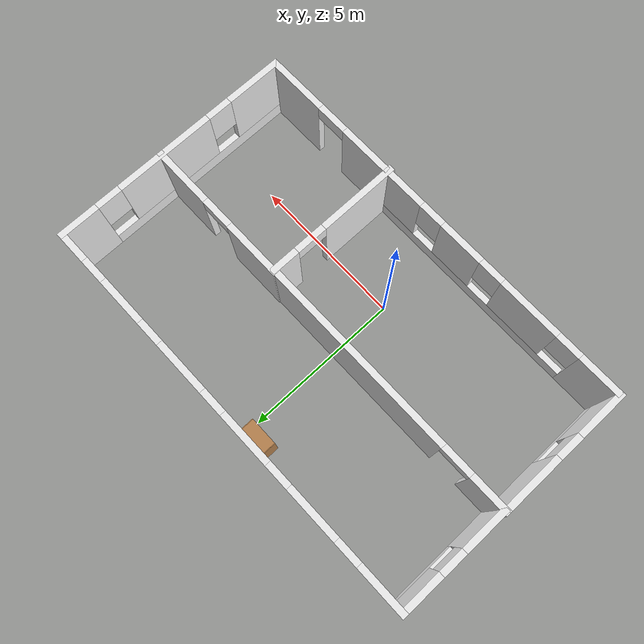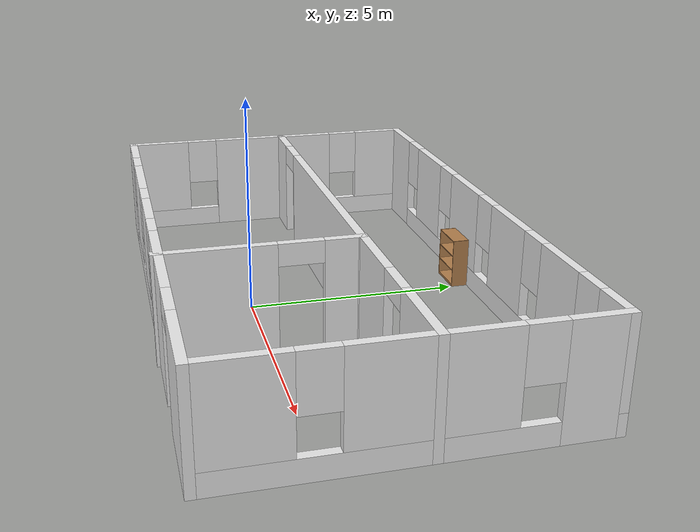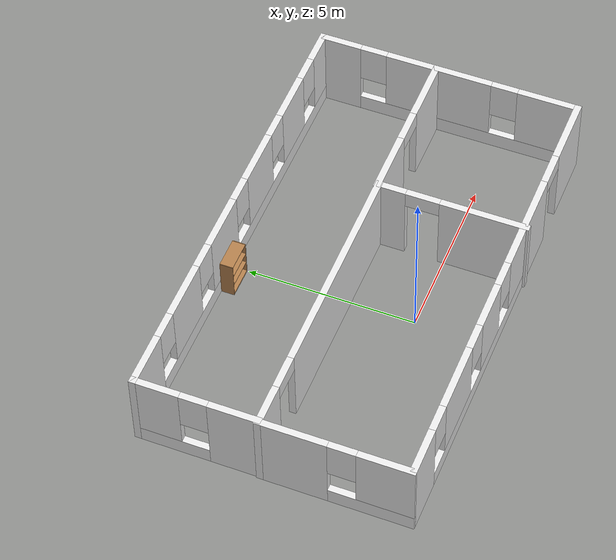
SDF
<sdf version="1.4">
 <world name="default">
  <model name="bookshelf">
   <static>0</static>
   <link name="link">
    <inertial><mass>1</mass></inertial>
    <collision name="back">
     <pose>0 0.005 0.6 0 -0 0</pose>
     <geometry><box><size>0.9 0.01 1.2</size></box></geometry>
    </collision>
    <visual name="visual1">
     <pose>0 0.005 0.6 0 -0 0</pose>
     <geometry><box><size>0.9 0.01 1.2</size></box></geometry>
     <material>
      <script><uri>file://media/materials/scripts/gazebo.material</uri><name>Gazebo/Wood</name></script>
     </material>
    </visual>
    <collision name="left_side">
     <pose>0.45 -0.195 0.6 0 -0 0</pose>
     <geometry><box><size>0.02 0.4 1.2</size></box></geometry>
    </collision>
    <visual name="visual2">
     <pose>0.45 -0.195 0.6 0 -0 0</pose>
     <geometry><box><size>0.02 0.4 1.2</size></box></geometry>
     <material>
      <script><uri>file://media/materials/scripts/gazebo.material</uri><name>Gazebo/Wood</name></script>
     </material>
    </visual>
    <collision name="right_side">
     <pose>-0.45 -0.195 0.6 0 -0 0</pose>
     <geometry><box><size>0.02 0.4 1.2</size></box></geometry>
    </collision>
    <visual name="visual3">
     <pose>-0.45 -0.195 0.6 0 -0 0</pose>
     <geometry><box><size>0.02 0.4 1.2</size></box></geometry>
     <material>
      <script><uri>file://media/materials/scripts/gazebo.material</uri><name>Gazebo/Wood</name></script>
     </material>
    </visual>
    <collision name="bottom">
     <pose>0 -0.195 0.03 0 -0 0</pose>
     <geometry><box><size>0.88 0.4 0.06</size></box></geometry>
    </collision>
    <visual name="visual4">
     <pose>0 -0.195 0.03 0 -0 0</pose>
     <geometry><box><size>0.88 0.4 0.06</size></box></geometry>
     <material>
      <script><uri>file://media/materials/scripts/gazebo.material</uri><name>Gazebo/Wood</name></script>
     </material>
    </visual>
    <collision name="top">
     <pose>0 -0.195 1.19 0 -0 0</pose>
     <geometry><box><size>0.88 0.4 0.02</size></box></geometry>
    </collision>
    <visual name="visual5">
     <pose>0 -0.195 1.19 0 -0 0</pose>
     <geometry><box><size>0.88 0.4 0.02</size></box></geometry>
     <material>
      <script><uri>file://media/materials/scripts/gazebo.material</uri><name>Gazebo/Wood</name></script>
     </material>
    </visual>
    <collision name="low_shelf">
     <pose>0 -0.195 0.43 0 -0 0</pose>
     <geometry><box><size>0.88 0.4 0.02</size></box></geometry>
    </collision>
    <visual name="visual6">
     <pose>0 -0.195 0.43 0 -0 0</pose>
     <geometry><box><size>0.88 0.4 0.02</size></box></geometry>
     <material>
      <script><uri>file://media/materials/scripts/gazebo.material</uri><name>Gazebo/Wood</name></script>
     </material>
    </visual>
    <collision name="high_shelf">
     <pose>0 -0.195 0.8 0 -0 0</pose>
     <geometry><box><size>0.88 0.4 0.02</size></box></geometry>
    </collision>
    <visual name="visual7">
     <pose>0 -0.195 0.8 0 -0 0</pose>
     <geometry><box><size>0.88 0.4 0.02</size></box></geometry>
     <material>
      <script><uri>file://media/materials/scripts/gazebo.material</uri><name>Gazebo/Wood</name></script>
     </material>
    </visual>
    <velocity_decay><linear>0</linear><angular>0</angular></velocity_decay>
   </link>
   <pose>-0.462025 5.45256 0 0 -0 0</pose>
  </model>
  <model name="threedoors">
   <static>1</static>
   <link name="Wall_1">
    <pose>-1.88691 -2.24867 0 0 -0 0</pose>
    <visual name="Wall_1_Visual_0">
     <pose>-3.67075 0 1.25 0 -0 0</pose>
     <geometry><box><size>1.39369 0.2 2.5</size></box></geometry>
     <material>
      <script><uri>file://media/materials/scripts/gazebo.material</uri><name>Gazebo/White</name></script>
     </material>
    </visual>
    <collision name="Wall_1_Collision_0">
     <geometry><box><size>1.39369 0.2 2.5</size></box></geometry>
     <pose>-3.67075 0 1.25 0 -0 0</pose>
    </collision>
    <visual name="Wall_1_Visual_1">
     <pose>0.696847 0 0.25 0 -0 0</pose>
     <geometry><box><size>7.3415 0.2 0.5</size></box></geometry>
     <material>
      <script><uri>file://media/materials/scripts/gazebo.material</uri><name>Gazebo/White</name></script>
     </material>
    </visual>
    <collision name="Wall_1_Collision_1">
     <geometry><box><size>7.3415 0.2 0.5</size></box></geometry>
     <pose>0.696847 0 0.25 0 -0 0</pose>
    </collision>
    <visual name="Wall_1_Visual_2">
     <pose>-1.16675 0 1.5 0 -0 0</pose>
     <geometry><box><size>2.0143 0.2 2</size></box></geometry>
     <material>
      <script><uri>file://media/materials/scripts/gazebo.material</uri><name>Gazebo/White</name></script>
     </material>
    </visual>
    <collision name="Wall_1_Collision_2">
     <geometry><box><size>2.0143 0.2 2</size></box></geometry>
     <pose>-1.16675 0 1.5 0 -0 0</pose>
    </collision>
    <visual name="Wall_1_Visual_3">
     <pose>1.37224 0 1.5 0 -0 0</pose>
     <geometry><box><size>1.46368 0.2 2</size></box></geometry>
     <material>
      <script><uri>file://media/materials/scripts/gazebo.material</uri><name>Gazebo/White</name></script>
     </material>
    </visual>
    <collision name="Wall_1_Collision_3">
     <geometry><box><size>1.46368 0.2 2</size></box></geometry>
     <pose>1.37224 0 1.5 0 -0 0</pose>
    </collision>
    <visual name="Wall_1_Visual_4">
     <pose>3.63584 0 1.5 0 -0 0</pose>
     <geometry><box><size>1.46352 0.2 2</size></box></geometry>
     <material>
      <script><uri>file://media/materials/scripts/gazebo.material</uri><name>Gazebo/White</name></script>
     </material>
    </visual>
    <collision name="Wall_1_Collision_4">
     <geometry><box><size>1.46352 0.2 2</size></box></geometry>
     <pose>3.63584 0 1.5 0 -0 0</pose>
    </collision>
    <visual name="Wall_1_Visual_5">
     <pose>-2.5739 0 1.9 0 -0 0</pose>
     <geometry><box><size>0.8 0.2 1.2</size></box></geometry>
     <material>
      <script><uri>file://media/materials/scripts/gazebo.material</uri><name>Gazebo/White</name></script>
     </material>
    </visual>
    <collision name="Wall_1_Collision_5">
     <geometry><box><size>0.8 0.2 1.2</size></box></geometry>
     <pose>-2.5739 0 1.9 0 -0 0</pose>
    </collision>
    <visual name="Wall_1_Visual_6">
     <pose>0.240401 0 1.9 0 -0 0</pose>
     <geometry><box><size>0.8 0.2 1.2</size></box></geometry>
     <material>
      <script><uri>file://media/materials/scripts/gazebo.material</uri><name>Gazebo/White</name></script>
     </material>
    </visual>
    <collision name="Wall_1_Collision_6">
     <geometry><box><size>0.8 0.2 1.2</size></box></geometry>
     <pose>0.240401 0 1.9 0 -0 0</pose>
    </collision>
    <visual name="Wall_1_Visual_7">
     <pose>2.50408 0 1.9 0 -0 0</pose>
     <geometry><box><size>0.8 0.2 1.2</size></box></geometry>
     <material>
      <script><uri>file://media/materials/scripts/gazebo.material</uri><name>Gazebo/White</name></script>
     </material>
    </visual>
    <collision name="Wall_1_Collision_7">
     <geometry><box><size>0.8 0.2 1.2</size></box></geometry>
     <pose>2.50408 0 1.9 0 -0 0</pose>
    </collision>
   </link>
   <link name="Wall_10">
    <pose>7.0717 1.65175 0 0 0 -1.5708</pose>
    <visual name="Wall_10_Visual_0">
     <pose>-3.34638 0 1.25 0 -0 0</pose>
     <geometry><box><size>1.30775 0.2 2.5</size></box></geometry>
     <material>
      <script><uri>file://media/materials/scripts/gazebo.material</uri><name>Gazebo/White</name></script>
     </material>
    </visual>
    <collision name="Wall_10_Collision_0">
     <geometry><box><size>1.30775 0.2 2.5</size></box></geometry>
     <pose>-3.34638 0 1.25 0 -0 0</pose>
    </collision>
    <visual name="Wall_10_Visual_1">
     <pose>0.653875 0 0.25 0 -0 0</pose>
     <geometry><box><size>6.69276 0.2 0.5</size></box></geometry>
     <material>
      <script><uri>file://media/materials/scripts/gazebo.material</uri><name>Gazebo/White</name></script>
     </material>
    </visual>
    <collision name="Wall_10_Collision_1">
     <geometry><box><size>6.69276 0.2 0.5</size></box></geometry>
     <pose>0.653875 0 0.25 0 -0 0</pose>
    </collision>
    <visual name="Wall_10_Visual_2">
     <pose>-0.287315 0 1.5 0 -0 0</pose>
     <geometry><box><size>3.21038 0.2 2</size></box></geometry>
     <material>
      <script><uri>file://media/materials/scripts/gazebo.material</uri><name>Gazebo/White</name></script>
     </material>
    </visual>
    <collision name="Wall_10_Collision_2">
     <geometry><box><size>3.21038 0.2 2</size></box></geometry>
     <pose>-0.287315 0 1.5 0 -0 0</pose>
    </collision>
    <visual name="Wall_10_Visual_3">
     <pose>3.05906 0 1.5 0 -0 0</pose>
     <geometry><box><size>1.88238 0.2 2</size></box></geometry>
     <material>
      <script><uri>file://media/materials/scripts/gazebo.material</uri><name>Gazebo/White</name></script>
     </material>
    </visual>
    <collision name="Wall_10_Collision_3">
     <geometry><box><size>1.88238 0.2 2</size></box></geometry>
     <pose>3.05906 0 1.5 0 -0 0</pose>
    </collision>
    <visual name="Wall_10_Visual_4">
     <pose>-2.2925 0 1.9 0 -0 0</pose>
     <geometry><box><size>0.8 0.2 1.2</size></box></geometry>
     <material>
      <script><uri>file://media/materials/scripts/gazebo.material</uri><name>Gazebo/White</name></script>
     </material>
    </visual>
    <collision name="Wall_10_Collision_4">
     <geometry><box><size>0.8 0.2 1.2</size></box></geometry>
     <pose>-2.2925 0 1.9 0 -0 0</pose>
    </collision>
    <visual name="Wall_10_Visual_5">
     <pose>1.71787 0 1.9 0 -0 0</pose>
     <geometry><box><size>0.8 0.2 1.2</size></box></geometry>
     <material>
      <script><uri>file://media/materials/scripts/gazebo.material</uri><name>Gazebo/White</name></script>
     </material>
    </visual>
    <collision name="Wall_10_Collision_5">
     <geometry><box><size>0.8 0.2 1.2</size></box></geometry>
     <pose>1.71787 0 1.9 0 -0 0</pose>
    </collision>
   </link>
   <link name="Wall_11">
    <pose>4.79273 -2.24851 0 0 -0 3.14159</pose>
    <visual name="Wall_11_Visual_0">
     <pose>-1.35536 0 1.25 0 -0 0</pose>
     <geometry><box><size>2.04722 0.2 2.5</size></box></geometry>
     <material>
      <script><uri>file://media/materials/scripts/gazebo.material</uri><name>Gazebo/White</name></script>
     </material>
    </visual>
    <collision name="Wall_11_Collision_0">
     <geometry><box><size>2.04722 0.2 2.5</size></box></geometry>
     <pose>-1.35536 0 1.25 0 -0 0</pose>
    </collision>
    <visual name="Wall_11_Visual_1">
     <pose>1.52361 0 1.25 0 -0 0</pose>
     <geometry><box><size>1.71072 0.2 2.5</size></box></geometry>
     <material>
      <script><uri>file://media/materials/scripts/gazebo.material</uri><name>Gazebo/White</name></script>
     </material>
    </visual>
    <collision name="Wall_11_Collision_1">
     <geometry><box><size>1.71072 0.2 2.5</size></box></geometry>
     <pose>1.52361 0 1.25 0 -0 0</pose>
    </collision>
    <visual name="Wall_11_Visual_2">
     <pose>0.168246 0 2.25 0 -0 0</pose>
     <geometry><box><size>1 0.2 0.5</size></box></geometry>
     <material>
      <script><uri>file://media/materials/scripts/gazebo.material</uri><name>Gazebo/White</name></script>
     </material>
    </visual>
    <collision name="Wall_11_Collision_2">
     <geometry><box><size>1 0.2 0.5</size></box></geometry>
     <pose>0.168246 0 2.25 0 -0 0</pose>
    </collision>
   </link>
   <link name="Wall_13">
    <pose>4.71626 2.03413 0 0 -0 0</pose>
    <visual name="Wall_13_Visual_0">
     <pose>-1.49302 0 1.25 0 -0 0</pose>
     <geometry><box><size>1.92486 0.2 2.5</size></box></geometry>
     <material>
      <script><uri>file://media/materials/scripts/gazebo.material</uri><name>Gazebo/White</name></script>
     </material>
    </visual>
    <collision name="Wall_13_Collision_0">
     <geometry><box><size>1.92486 0.2 2.5</size></box></geometry>
     <pose>-1.49302 0 1.25 0 -0 0</pose>
    </collision>
    <visual name="Wall_13_Visual_1">
     <pose>1.46243 0 1.25 0 -0 0</pose>
     <geometry><box><size>1.98604 0.2 2.5</size></box></geometry>
     <material>
      <script><uri>file://media/materials/scripts/gazebo.material</uri><name>Gazebo/White</name></script>
     </material>
    </visual>
    <collision name="Wall_13_Collision_1">
     <geometry><box><size>1.98604 0.2 2.5</size></box></geometry>
     <pose>1.46243 0 1.25 0 -0 0</pose>
    </collision>
    <visual name="Wall_13_Visual_2">
     <pose>-0.03059 0 2.25 0 -0 0</pose>
     <geometry><box><size>1 0.2 0.5</size></box></geometry>
     <material>
      <script><uri>file://media/materials/scripts/gazebo.material</uri><name>Gazebo/White</name></script>
     </material>
    </visual>
    <collision name="Wall_13_Collision_2">
     <geometry><box><size>1 0.2 0.5</size></box></geometry>
     <pose>-0.03059 0 2.25 0 -0 0</pose>
    </collision>
   </link>
   <link name="Wall_3">
    <pose>2.37826 -0.155399 0 0 -0 1.5708</pose>
    <visual name="Wall_3_Visual_0">
     <pose>-0.95997 0 1.25 0 -0 0</pose>
     <geometry><box><size>2.60705 0.2 2.5</size></box></geometry>
     <material>
      <script><uri>file://media/materials/scripts/gazebo.material</uri><name>Gazebo/White</name></script>
     </material>
    </visual>
    <collision name="Wall_3_Collision_0">
     <geometry><box><size>2.60705 0.2 2.5</size></box></geometry>
     <pose>-0.95997 0 1.25 0 -0 0</pose>
    </collision>
    <visual name="Wall_3_Visual_1">
     <pose>1.80353 0 1.25 0 -0 0</pose>
     <geometry><box><size>0.91994 0.2 2.5</size></box></geometry>
     <material>
      <script><uri>file://media/materials/scripts/gazebo.material</uri><name>Gazebo/White</name></script>
     </material>
    </visual>
    <collision name="Wall_3_Collision_1">
     <geometry><box><size>0.91994 0.2 2.5</size></box></geometry>
     <pose>1.80353 0 1.25 0 -0 0</pose>
    </collision>
    <visual name="Wall_3_Visual_2">
     <pose>0.843555 0 2.25 0 -0 0</pose>
     <geometry><box><size>1 0.2 0.5</size></box></geometry>
     <material>
      <script><uri>file://media/materials/scripts/gazebo.material</uri><name>Gazebo/White</name></script>
     </material>
    </visual>
    <collision name="Wall_3_Collision_2">
     <geometry><box><size>1 0.2 0.5</size></box></geometry>
     <pose>0.843555 0 2.25 0 -0 0</pose>
    </collision>
   </link>
   <link name="Wall_4">
    <pose>-1.93114 2.00809 0 0 -0 3.14159</pose>
    <visual name="Wall_4_Visual_0">
     <pose>-1.14398 0 1.25 0 -0 0</pose>
     <geometry><box><size>6.53085 0.2 2.5</size></box></geometry>
     <material>
      <script><uri>file://media/materials/scripts/gazebo.material</uri><name>Gazebo/White</name></script>
     </material>
    </visual>
    <collision name="Wall_4_Collision_0">
     <geometry><box><size>6.53085 0.2 2.5</size></box></geometry>
     <pose>-1.14398 0 1.25 0 -0 0</pose>
    </collision>
    <visual name="Wall_4_Visual_1">
     <pose>3.76542 0 1.25 0 -0 0</pose>
     <geometry><box><size>1.28795 0.2 2.5</size></box></geometry>
     <material>
      <script><uri>file://media/materials/scripts/gazebo.material</uri><name>Gazebo/White</name></script>
     </material>
    </visual>
    <collision name="Wall_4_Collision_1">
     <geometry><box><size>1.28795 0.2 2.5</size></box></geometry>
     <pose>3.76542 0 1.25 0 -0 0</pose>
    </collision>
    <visual name="Wall_4_Visual_2">
     <pose>2.62145 0 2.25 0 -0 0</pose>
     <geometry><box><size>1 0.2 0.5</size></box></geometry>
     <material>
      <script><uri>file://media/materials/scripts/gazebo.material</uri><name>Gazebo/White</name></script>
     </material>
    </visual>
    <collision name="Wall_4_Collision_2">
     <geometry><box><size>1 0.2 0.5</size></box></geometry>
     <pose>2.62145 0 2.25 0 -0 0</pose>
    </collision>
   </link>
   <link name="Wall_5">
    <pose>-6.24054 -0.120221 0 0 0 -1.5708</pose>
    <visual name="Wall_5_Visual_0">
     <pose>-1.21361 0 1.25 0 -0 0</pose>
     <geometry><box><size>2.02942 0.2 2.5</size></box></geometry>
     <material>
      <script><uri>file://media/materials/scripts/gazebo.material</uri><name>Gazebo/White</name></script>
     </material>
    </visual>
    <collision name="Wall_5_Collision_0">
     <geometry><box><size>2.02942 0.2 2.5</size></box></geometry>
     <pose>-1.21361 0 1.25 0 -0 0</pose>
    </collision>
    <visual name="Wall_5_Visual_1">
     <pose>1.01471 0 0.25 0 -0 0</pose>
     <geometry><box><size>2.42721 0.2 0.5</size></box></geometry>
     <material>
      <script><uri>file://media/materials/scripts/gazebo.material</uri><name>Gazebo/White</name></script>
     </material>
    </visual>
    <collision name="Wall_5_Collision_1">
     <geometry><box><size>2.42721 0.2 0.5</size></box></geometry>
     <pose>1.01471 0 0.25 0 -0 0</pose>
    </collision>
    <visual name="Wall_5_Visual_2">
     <pose>1.41471 0 1.5 0 -0 0</pose>
     <geometry><box><size>1.62721 0.2 2</size></box></geometry>
     <material>
      <script><uri>file://media/materials/scripts/gazebo.material</uri><name>Gazebo/White</name></script>
     </material>
    </visual>
    <collision name="Wall_5_Collision_2">
     <geometry><box><size>1.62721 0.2 2</size></box></geometry>
     <pose>1.41471 0 1.5 0 -0 0</pose>
    </collision>
    <visual name="Wall_5_Visual_3">
     <pose>0.201101 0 1.9 0 -0 0</pose>
     <geometry><box><size>0.8 0.2 1.2</size></box></geometry>
     <material>
      <script><uri>file://media/materials/scripts/gazebo.material</uri><name>Gazebo/White</name></script>
     </material>
    </visual>
    <collision name="Wall_5_Collision_3">
     <geometry><box><size>0.8 0.2 1.2</size></box></geometry>
     <pose>0.201101 0 1.9 0 -0 0</pose>
    </collision>
   </link>
   <link name="Wall_8">
    <pose>-6.20446 3.79306 0 0 -0 1.5708</pose>
    <visual name="Wall_8_Visual_0">
     <pose>-1.10653 0 1.25 0 -0 0</pose>
     <geometry><box><size>1.50483 0.2 2.5</size></box></geometry>
     <material>
      <script><uri>file://media/materials/scripts/gazebo.material</uri><name>Gazebo/White</name></script>
     </material>
    </visual>
    <collision name="Wall_8_Collision_0">
     <geometry><box><size>1.50483 0.2 2.5</size></box></geometry>
     <pose>-1.10653 0 1.25 0 -0 0</pose>
    </collision>
    <visual name="Wall_8_Visual_1">
     <pose>0.752413 0 0.25 0 -0 0</pose>
     <geometry><box><size>2.21306 0.2 0.5</size></box></geometry>
     <material>
      <script><uri>file://media/materials/scripts/gazebo.material</uri><name>Gazebo/White</name></script>
     </material>
    </visual>
    <collision name="Wall_8_Collision_1">
     <geometry><box><size>2.21306 0.2 0.5</size></box></geometry>
     <pose>0.752413 0 0.25 0 -0 0</pose>
    </collision>
    <visual name="Wall_8_Visual_2">
     <pose>1.15241 0 1.5 0 -0 0</pose>
     <geometry><box><size>1.41305 0.2 2</size></box></geometry>
     <material>
      <script><uri>file://media/materials/scripts/gazebo.material</uri><name>Gazebo/White</name></script>
     </material>
    </visual>
    <collision name="Wall_8_Collision_2">
     <geometry><box><size>1.41305 0.2 2</size></box></geometry>
     <pose>1.15241 0 1.5 0 -0 0</pose>
    </collision>
    <visual name="Wall_8_Visual_3">
     <pose>0.045885 0 1.9 0 -0 0</pose>
     <geometry><box><size>0.8 0.2 1.2</size></box></geometry>
     <material>
      <script><uri>file://media/materials/scripts/gazebo.material</uri><name>Gazebo/White</name></script>
     </material>
    </visual>
    <collision name="Wall_8_Collision_3">
     <geometry><box><size>0.8 0.2 1.2</size></box></geometry>
     <pose>0.045885 0 1.9 0 -0 0</pose>
    </collision>
   </link>
   <link name="Wall_9">
    <pose>0.433623 5.552 0 0 -0 0</pose>
    <visual name="Wall_9_Visual_0">
     <pose>-5.9245 0 1.25 0 -0 0</pose>
     <geometry><box><size>1.62721 0.2 2.5</size></box></geometry>
     <material>
      <script><uri>file://media/materials/scripts/gazebo.material</uri><name>Gazebo/White</name></script>
     </material>
    </visual>
    <collision name="Wall_9_Collision_0">
     <geometry><box><size>1.62721 0.2 2.5</size></box></geometry>
     <pose>-5.9245 0 1.25 0 -0 0</pose>
    </collision>
    <visual name="Wall_9_Visual_1">
     <pose>0.813602 0 0.25 0 -0 0</pose>
     <geometry><box><size>11.849 0.2 0.5</size></box></geometry>
     <material>
      <script><uri>file://media/materials/scripts/gazebo.material</uri><name>Gazebo/White</name></script>
     </material>
    </visual>
    <collision name="Wall_9_Collision_1">
     <geometry><box><size>11.849 0.2 0.5</size></box></geometry>
     <pose>0.813602 0 0.25 0 -0 0</pose>
    </collision>
    <visual name="Wall_9_Visual_2">
     <pose>-3.4389 0 1.5 0 -0 0</pose>
     <geometry><box><size>1.744 0.2 2</size></box></geometry>
     <material>
      <script><uri>file://media/materials/scripts/gazebo.material</uri><name>Gazebo/White</name></script>
     </material>
    </visual>
    <collision name="Wall_9_Collision_2">
     <geometry><box><size>1.744 0.2 2</size></box></geometry>
     <pose>-3.4389 0 1.5 0 -0 0</pose>
    </collision>
    <visual name="Wall_9_Visual_3">
     <pose>-0.900462 0 1.5 0 -0 0</pose>
     <geometry><box><size>1.73287 0.2 2</size></box></geometry>
     <material>
      <script><uri>file://media/materials/scripts/gazebo.material</uri><name>Gazebo/White</name></script>
     </material>
    </visual>
    <collision name="Wall_9_Collision_3">
     <geometry><box><size>1.73287 0.2 2</size></box></geometry>
     <pose>-0.900462 0 1.5 0 -0 0</pose>
    </collision>
    <visual name="Wall_9_Visual_4">
     <pose>1.63241 0 1.5 0 -0 0</pose>
     <geometry><box><size>1.73287 0.2 2</size></box></geometry>
     <material>
      <script><uri>file://media/materials/scripts/gazebo.material</uri><name>Gazebo/White</name></script>
     </material>
    </visual>
    <collision name="Wall_9_Collision_4">
     <geometry><box><size>1.73287 0.2 2</size></box></geometry>
     <pose>1.63241 0 1.5 0 -0 0</pose>
    </collision>
    <visual name="Wall_9_Visual_5">
     <pose>4.07733 0 1.5 0 -0 0</pose>
     <geometry><box><size>1.55698 0.2 2</size></box></geometry>
     <material>
      <script><uri>file://media/materials/scripts/gazebo.material</uri><name>Gazebo/White</name></script>
     </material>
    </visual>
    <collision name="Wall_9_Collision_5">
     <geometry><box><size>1.55698 0.2 2</size></box></geometry>
     <pose>4.07733 0 1.5 0 -0 0</pose>
    </collision>
    <visual name="Wall_9_Visual_6">
     <pose>6.19696 0 1.5 0 -0 0</pose>
     <geometry><box><size>1.08228 0.2 2</size></box></geometry>
     <material>
      <script><uri>file://media/materials/scripts/gazebo.material</uri><name>Gazebo/White</name></script>
     </material>
    </visual>
    <collision name="Wall_9_Collision_6">
     <geometry><box><size>1.08228 0.2 2</size></box></geometry>
     <pose>6.19696 0 1.5 0 -0 0</pose>
    </collision>
    <visual name="Wall_9_Visual_7">
     <pose>-4.71089 0 1.9 0 -0 0</pose>
     <geometry><box><size>0.8 0.2 1.2</size></box></geometry>
     <material>
      <script><uri>file://media/materials/scripts/gazebo.material</uri><name>Gazebo/White</name></script>
     </material>
    </visual>
    <collision name="Wall_9_Collision_7">
     <geometry><box><size>0.8 0.2 1.2</size></box></geometry>
     <pose>-4.71089 0 1.9 0 -0 0</pose>
    </collision>
    <visual name="Wall_9_Visual_8">
     <pose>-2.1669 0 1.9 0 -0 0</pose>
     <geometry><box><size>0.8 0.2 1.2</size></box></geometry>
     <material>
      <script><uri>file://media/materials/scripts/gazebo.material</uri><name>Gazebo/White</name></script>
     </material>
    </visual>
    <collision name="Wall_9_Collision_8">
     <geometry><box><size>0.8 0.2 1.2</size></box></geometry>
     <pose>-2.1669 0 1.9 0 -0 0</pose>
    </collision>
    <visual name="Wall_9_Visual_9">
     <pose>0.365974 0 1.9 0 -0 0</pose>
     <geometry><box><size>0.8 0.2 1.2</size></box></geometry>
     <material>
      <script><uri>file://media/materials/scripts/gazebo.material</uri><name>Gazebo/White</name></script>
     </material>
    </visual>
    <collision name="Wall_9_Collision_9">
     <geometry><box><size>0.8 0.2 1.2</size></box></geometry>
     <pose>0.365974 0 1.9 0 -0 0</pose>
    </collision>
    <visual name="Wall_9_Visual_10">
     <pose>2.89884 0 1.9 0 -0 0</pose>
     <geometry><box><size>0.8 0.2 1.2</size></box></geometry>
     <material>
      <script><uri>file://media/materials/scripts/gazebo.material</uri><name>Gazebo/White</name></script>
     </material>
    </visual>
    <collision name="Wall_9_Collision_10">
     <geometry><box><size>0.8 0.2 1.2</size></box></geometry>
     <pose>2.89884 0 1.9 0 -0 0</pose>
    </collision>
    <visual name="Wall_9_Visual_11">
     <pose>5.25582 0 1.9 0 -0 0</pose>
     <geometry><box><size>0.8 0.2 1.2</size></box></geometry>
     <material>
      <script><uri>file://media/materials/scripts/gazebo.material</uri><name>Gazebo/White</name></script>
     </material>
    </visual>
    <collision name="Wall_9_Collision_11">
     <geometry><box><size>0.8 0.2 1.2</size></box></geometry>
     <pose>5.25582 0 1.9 0 -0 0</pose>
    </collision>
   </link>
  </model>
 </world>
</sdf>
